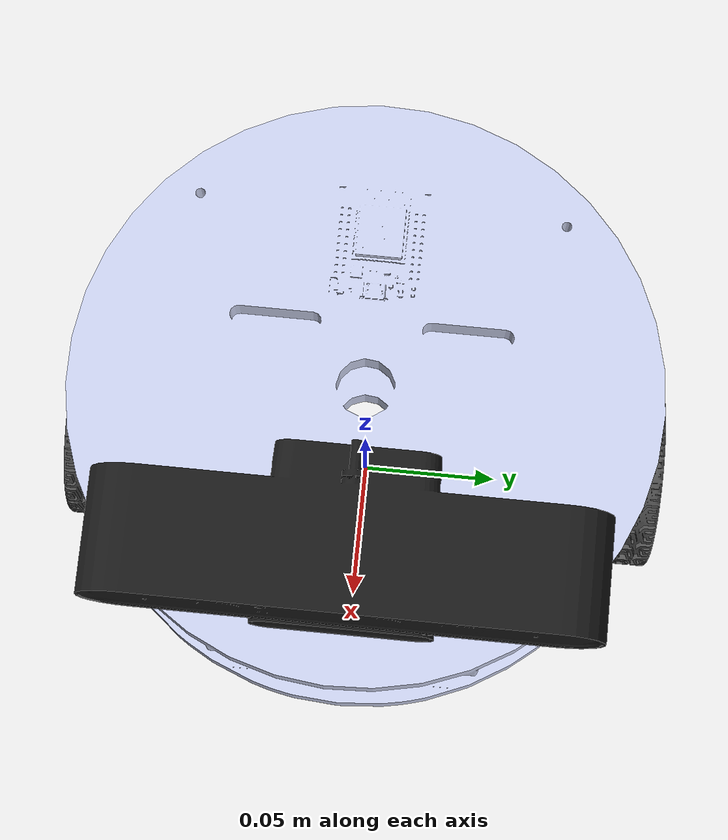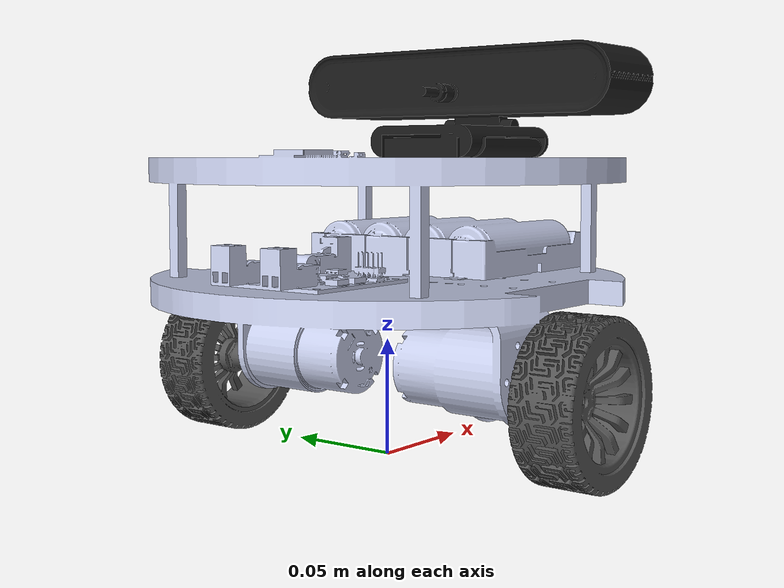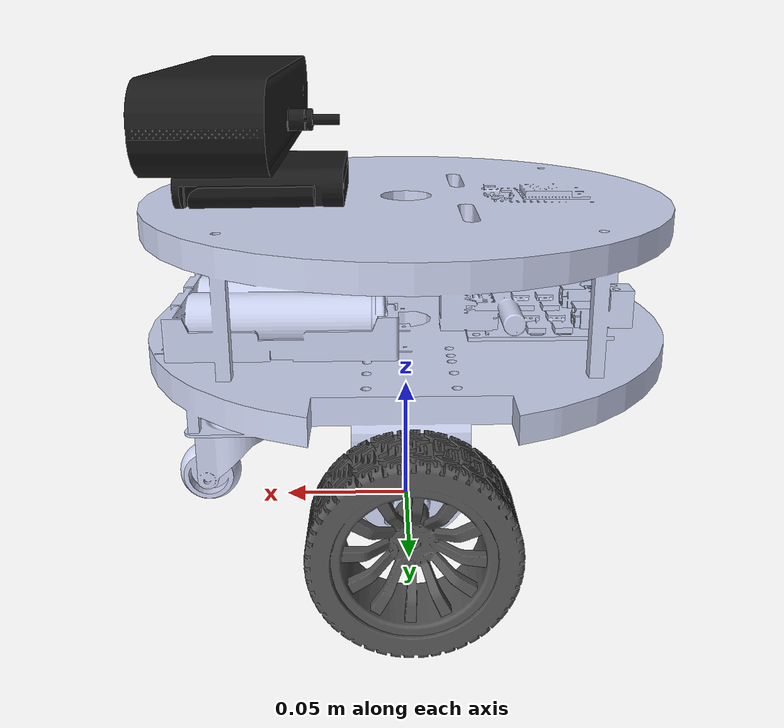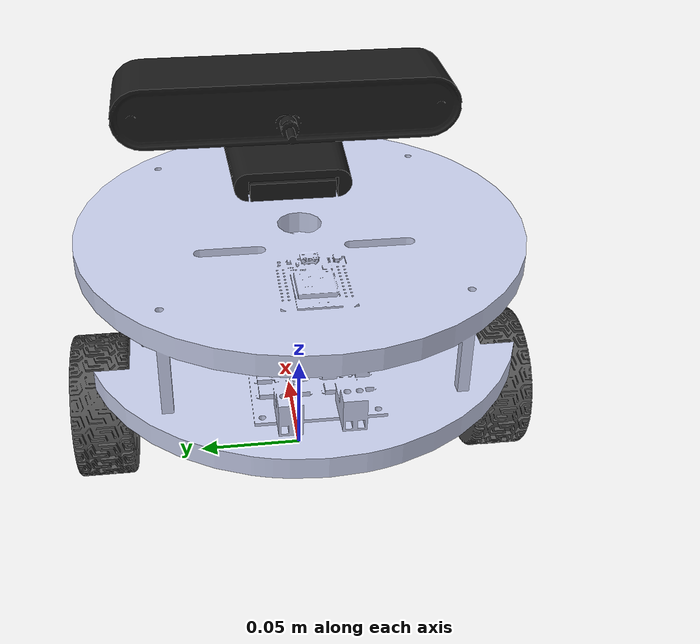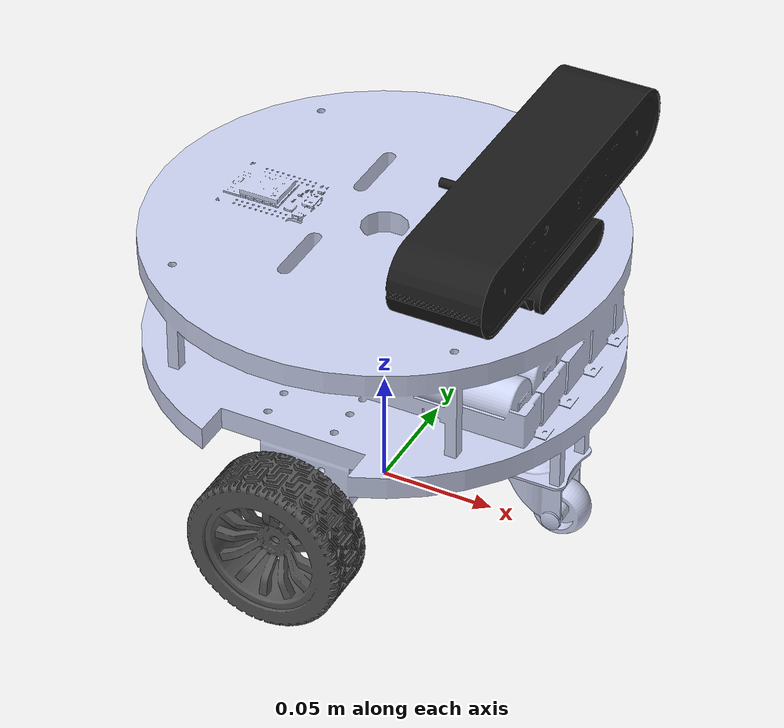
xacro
<?xml version="1.0" encoding="utf-8"?>
<!-- Mô hình robot đồ án CĐT K18. Launch đọc file này bằng xacro.
     Xem nhanh URDF đã ghép: xacro da_cdt_robot.urdf.xacro > /tmp/da_cdt_robot.urdf -->
<robot name="da_cdt_robot" xmlns:xacro="http://www.ros.org/wiki/xacro">
  <xacro:include filename="da_cdt_robot_core.xacro" />
  <xacro:include filename="da_cdt_robot.gazebo.xacro" />
</robot>

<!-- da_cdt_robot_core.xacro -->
<robot xmlns:xacro="http://www.ros.org/wiki/xacro">

  <link name="base_footprint" />
  <joint name="joint_base_footprint" type="fixed">
    <origin xyz="0 0 0.067861" rpy="0 0 0" />
    <parent link="base_footprint" />
    <child link="base_link" />
  </joint>

  <link
    name="base_link">
    <inertial>
      <origin
        xyz="0.00535917894385861 5.60881299681223E-05 0.0248459745770875"
        rpy="0 0 0" />
      <mass
        value="0.77992717564248" />
      <inertia
        ixx="0.00140723560834389"
        ixy="-1.03280727276193E-08"
        ixz="-2.67795769130674E-07"
        iyy="0.0016199164393111"
        iyz="-1.24573469043027E-09"
        izz="0.00299885139037114" />
    </inertial>
    <visual>
      <origin
        xyz="0 0 0"
        rpy="0 0 0" />
      <geometry>
        <mesh
          filename="package://da_cdt_robot_description/meshes/base_link.STL" />
      </geometry>
      <material
        name="da_cdt_khung">
        <color
          rgba="0.792156862745098 0.819607843137255 0.933333333333333 1" />
      </material>
    </visual>
    <collision>
      <origin
        xyz="0 0 0.00805"
        rpy="0 0 0" />
      <geometry>
        <cylinder
          radius="0.1"
          length="0.1099" />
      </geometry>
    </collision>
  </link>
  <link
    name="link_left_wheel">
    <inertial>
      <origin
        xyz="3.35030336806597E-11 -1.07412828631581E-11 0.0123803157274746"
        rpy="0 0 0" />
      <mass
        value="0.034948967905853" />
      <inertia
        ixx="1.52305073305072E-05"
        ixy="-2.62471896751491E-10"
        ixz="1.62193651053658E-14"
        iyy="1.52297876067339E-05"
        iyz="3.93045905830362E-14"
        izz="2.57844981109313E-05" />
    </inertial>
    <visual>
      <origin
        xyz="0 0 0"
        rpy="0 0 0" />
      <geometry>
        <mesh
          filename="package://da_cdt_robot_description/meshes/link_left_wheel.STL" />
      </geometry>
      <material
        name="da_cdt_banh_xe">
        <color
          rgba="0.333333333333333 0.333333333333333 0.333333333333333 1" />
      </material>
    </visual>
    <!-- Va chạm dùng hình trụ (r = 0.034 m đo từ mesh) thay cho STL để mô phỏng lăn ổn định -->
    <collision>
      <origin
        xyz="0 0 0.0099"
        rpy="0 0 0" />
      <geometry>
        <cylinder
          radius="0.034"
          length="0.032" />
      </geometry>
    </collision>
  </link>
  <joint
    name="joint_left_wheel"
    type="continuous">
    <origin
      xyz="-4.4038E-05 0.082187 -0.033861"
      rpy="-1.5708 0 0" />
    <parent
      link="base_link" />
    <child
      link="link_left_wheel" />
    <axis
      xyz="0 0 1" />
    <dynamics
      damping="0.1"
      friction="0.1" />
  </joint>
  <link
    name="link_right_wheel">
    <inertial>
      <origin
        xyz="-3.35029642917206E-11 -1.07411718408557E-11 -0.0123803157274747"
        rpy="0 0 0" />
      <mass
        value="0.0349489679058519" />
      <inertia
        ixx="1.52305073304929E-05"
        ixy="2.62471896864113E-10"
        ixz="1.62186243174696E-14"
        iyy="1.52297876067199E-05"
        iyz="-3.93090361957947E-14"
        izz="2.57844981109306E-05" />
    </inertial>
    <visual>
      <origin
        xyz="0 0 0"
        rpy="0 0 0" />
      <geometry>
        <mesh
          filename="package://da_cdt_robot_description/meshes/link_right_wheel.STL" />
      </geometry>
      <material
        name="da_cdt_banh_xe">
        <color
          rgba="0.333333333333333 0.333333333333333 0.333333333333333 1" />
      </material>
    </visual>
    <!-- Va chạm dùng hình trụ (r = 0.034 m đo từ mesh) thay cho STL để mô phỏng lăn ổn định -->
    <collision>
      <origin
        xyz="0 0 -0.0099"
        rpy="0 0 0" />
      <geometry>
        <cylinder
          radius="0.034"
          length="0.032" />
      </geometry>
    </collision>
  </link>
  <joint
    name="joint_right_wheel"
    type="continuous">
    <origin
      xyz="4.4038E-05 -0.082187 -0.033861"
      rpy="-1.5708 0 0" />
    <parent
      link="base_link" />
    <child
      link="link_right_wheel" />
    <axis
      xyz="0 0 1" />
    <dynamics
      damping="0.1"
      friction="0.1" />
  </joint>
  <link
    name="link_caster1">
    <inertial>
      <origin
        xyz="0.00527811488376148 -0.000106206091729212 -0.00579018886404675"
        rpy="0 0 0" />
      <mass
        value="0.00281986063852417" />
      <inertia
        ixx="2.37327072001014E-07"
        ixy="3.93836556213161E-10"
        ixz="2.69249843199402E-08"
        iyy="2.15534973510052E-07"
        iyz="4.86378538704613E-10"
        izz="3.20808491825332E-07" />
    </inertial>
    <visual>
      <origin
        xyz="0 0 0"
        rpy="0 0 0" />
      <geometry>
        <mesh
          filename="package://da_cdt_robot_description/meshes/link_caster1.STL" />
      </geometry>
      <material
        name="da_cdt_khung">
        <color
          rgba="0.792156862745098 0.819607843137255 0.933333333333333 1" />
      </material>
    </visual>
    <collision>
      <origin
        xyz="0 0 0"
        rpy="0 0 0" />
      <geometry>
        <mesh
          filename="package://da_cdt_robot_description/meshes/link_caster1.STL" />
      </geometry>
    </collision>
  </link>
  <joint
    name="joint_caster1"
    type="fixed">
    <origin
      xyz="0.07 0 -0.036352"
      rpy="0 0 0" />
    <parent
      link="base_link" />
    <child
      link="link_caster1" />
  </joint>
  <link
    name="link_caster2">
    <inertial>
      <origin
        xyz="1.69135538907739E-17 -1.38777878078145E-17 -6.93889390390723E-18"
        rpy="0 0 0" />
      <mass
        value="0.00382605152202027" />
      <inertia
        ixx="2.05650921220307E-07"
        ixy="-4.04199835308076E-15"
        ixz="-2.18074014943947E-09"
        iyy="2.05611663304481E-07"
        iyz="2.24529191287498E-13"
        izz="3.26749719142583E-07" />
    </inertial>
    <visual>
      <origin
        xyz="0 0 0"
        rpy="0 0 0" />
      <geometry>
        <mesh
          filename="package://da_cdt_robot_description/meshes/link_caster2.STL" />
      </geometry>
      <material
        name="da_cdt_khung">
        <color
          rgba="0.792156862745098 0.819607843137255 0.933333333333333 1" />
      </material>
    </visual>
    <!-- Va chạm dùng hình cầu (r = 0.0125 m đo từ mesh) để bánh caster trượt mượt -->
    <collision>
      <origin
        xyz="0 0 0"
        rpy="0 0 0" />
      <geometry>
        <sphere
          radius="0.0125" />
      </geometry>
    </collision>
  </link>
  <joint
    name="joint_caster2"
    type="fixed">
    <origin
      xyz="0.011719 0.0013111 -0.019"
      rpy="-1.5708 0 0" />
    <parent
      link="link_caster1" />
    <child
      link="link_caster2" />
  </joint>
  <link
    name="link_camera">
    <inertial>
      <origin
        xyz="0.00129537454616273 -3.02938896122595E-06 0.0264600870733192"
        rpy="0 0 0" />
      <mass
        value="0.220446939797818" />
      <inertia
        ixx="0.000406101930366683"
        ixy="4.49923169164281E-08"
        ixz="1.58793391906706E-07"
        iyy="4.67237498273719E-05"
        iyz="2.0242442164855E-09"
        izz="0.000425228479890681" />
    </inertial>
    <visual>
      <origin
        xyz="0 0 0"
        rpy="0 0 0" />
      <geometry>
        <mesh
          filename="package://da_cdt_robot_description/meshes/link_camera.STL" />
      </geometry>
      <material
        name="da_cdt_camera">
        <color
          rgba="0.101960784313725 0.101960784313725 0.101960784313725 1" />
      </material>
    </visual>
    <!-- Va chạm dùng hình hộp bao mesh link_camera.STL
         (x -0.037..0.023, y ±0.0824, z -0.0028..0.0462) thay cho ~16 nghìn tam giác -->
    <collision>
      <origin
        xyz="-0.007 0 0.0217"
        rpy="0 0 0" />
      <geometry>
        <box
          size="0.06 0.1648 0.049" />
      </geometry>
    </collision>
  </link>
  <joint
    name="joint_camera"
    type="fixed">
    <origin
      xyz="0.06 0 0.062839"
      rpy="0 0 0" />
    <parent
      link="base_link" />
    <child
      link="link_camera" />
  </joint>

  <link name="link_camera_optical" />
  <joint
    name="joint_camera_optical"
    type="fixed">
    <origin
      xyz="0.023 0 0.022"
      rpy="-1.5708 0 -1.5708" />
    <parent
      link="link_camera" />
    <child
      link="link_camera_optical" />
  </joint>
</robot>
